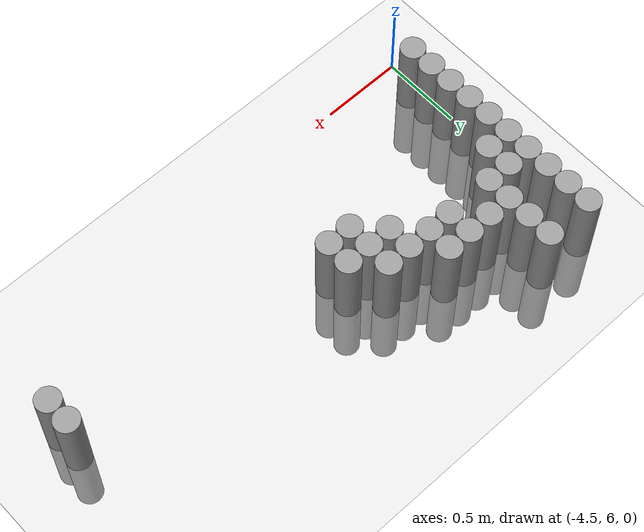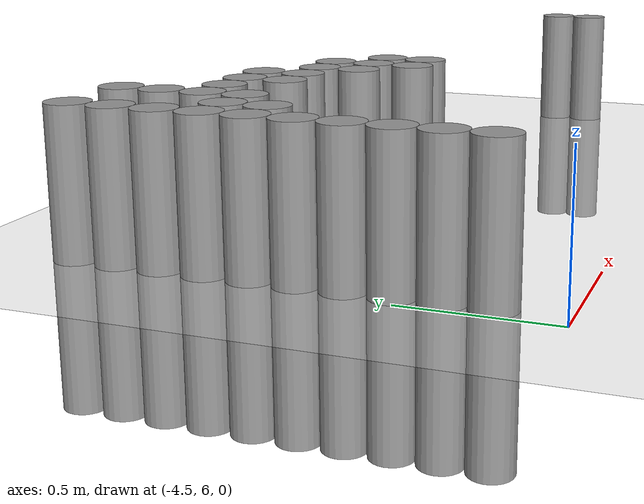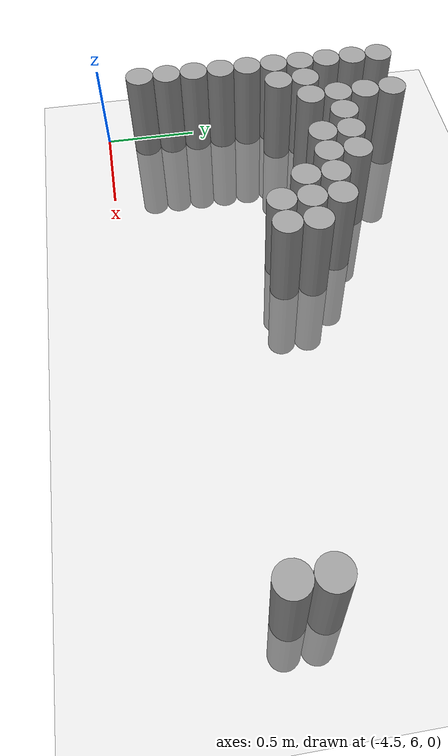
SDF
<sdf version="1.6">
 <world name="default">
  <model name="ground_plane">
   <static>1</static>
   <static>1</static>
   <link name="link">
    <collision name="collision">
     <geometry><plane><normal>0 0 1</normal><size>100 100</size></plane></geometry>
     <surface><friction><ode><mu>100</mu><mu2>50</mu2></ode></friction></surface>
    </collision>
    <visual name="visual">
     <cast_shadows>0</cast_shadows>
     <geometry><plane><normal>0 0 1</normal><size>100 100</size></plane></geometry>
     <material>
      <script><uri>file://media/materials/scripts/gazebo.material</uri><name>Gazebo/Grey</name></script>
     </material>
    </visual>
   </link>
  </model>
  <model name="unit_cylinder_103">
   <static>1</static>
   <pose>-4.425000 6.225000 0.000000 0.000000 0.000000 0.000000</pose>
   <link name="link">
    <inertial>
     <mass>1</mass>
     <inertia><ixx>0.145833</ixx><ixy>0</ixy><ixz>0</ixz><iyy>0.145833</iyy><iyz>0</iyz><izz>0.125</izz></inertia>
    </inertial>
    <collision name="collision">
     <geometry><cylinder><radius>0.075000</radius><length>1</length></cylinder></geometry>
    </collision>
    <visual name="visual">
     <geometry><cylinder><radius>0.075000</radius><length>1</length></cylinder></geometry>
     <material>
      <script><name>Gazebo/Grey</name><uri>file://media/materials/scripts/gazebo.material</uri></script>
     </material>
    </visual>
   </link>
  </model>
  <model name="unit_cylinder_104">
   <static>1</static>
   <pose>-4.425000 6.375000 0.000000 0.000000 0.000000 0.000000</pose>
   <link name="link">
    <inertial>
     <mass>1</mass>
     <inertia><ixx>0.145833</ixx><ixy>0</ixy><ixz>0</ixz><iyy>0.145833</iyy><iyz>0</iyz><izz>0.125</izz></inertia>
    </inertial>
    <collision name="collision">
     <geometry><cylinder><radius>0.075000</radius><length>1</length></cylinder></geometry>
    </collision>
    <visual name="visual">
     <geometry><cylinder><radius>0.075000</radius><length>1</length></cylinder></geometry>
     <material>
      <script><name>Gazebo/Grey</name><uri>file://media/materials/scripts/gazebo.material</uri></script>
     </material>
    </visual>
   </link>
  </model>
  <model name="unit_cylinder_105">
   <static>1</static>
   <pose>-4.425000 6.525000 0.000000 0.000000 0.000000 0.000000</pose>
   <link name="link">
    <inertial>
     <mass>1</mass>
     <inertia><ixx>0.145833</ixx><ixy>0</ixy><ixz>0</ixz><iyy>0.145833</iyy><iyz>0</iyz><izz>0.125</izz></inertia>
    </inertial>
    <collision name="collision">
     <geometry><cylinder><radius>0.075000</radius><length>1</length></cylinder></geometry>
    </collision>
    <visual name="visual">
     <geometry><cylinder><radius>0.075000</radius><length>1</length></cylinder></geometry>
     <material>
      <script><name>Gazebo/Grey</name><uri>file://media/materials/scripts/gazebo.material</uri></script>
     </material>
    </visual>
   </link>
  </model>
  <model name="unit_cylinder_106">
   <static>1</static>
   <pose>-4.425000 6.675000 0.000000 0.000000 0.000000 0.000000</pose>
   <link name="link">
    <inertial>
     <mass>1</mass>
     <inertia><ixx>0.145833</ixx><ixy>0</ixy><ixz>0</ixz><iyy>0.145833</iyy><iyz>0</iyz><izz>0.125</izz></inertia>
    </inertial>
    <collision name="collision">
     <geometry><cylinder><radius>0.075000</radius><length>1</length></cylinder></geometry>
    </collision>
    <visual name="visual">
     <geometry><cylinder><radius>0.075000</radius><length>1</length></cylinder></geometry>
     <material>
      <script><name>Gazebo/Grey</name><uri>file://media/materials/scripts/gazebo.material</uri></script>
     </material>
    </visual>
   </link>
  </model>
  <model name="unit_cylinder_107">
   <static>1</static>
   <pose>-4.425000 6.825000 0.000000 0.000000 0.000000 0.000000</pose>
   <link name="link">
    <inertial>
     <mass>1</mass>
     <inertia><ixx>0.145833</ixx><ixy>0</ixy><ixz>0</ixz><iyy>0.145833</iyy><iyz>0</iyz><izz>0.125</izz></inertia>
    </inertial>
    <collision name="collision">
     <geometry><cylinder><radius>0.075000</radius><length>1</length></cylinder></geometry>
    </collision>
    <visual name="visual">
     <geometry><cylinder><radius>0.075000</radius><length>1</length></cylinder></geometry>
     <material>
      <script><name>Gazebo/Grey</name><uri>file://media/materials/scripts/gazebo.material</uri></script>
     </material>
    </visual>
   </link>
  </model>
  <model name="unit_cylinder_108">
   <static>1</static>
   <pose>-4.425000 6.975000 0.000000 0.000000 0.000000 0.000000</pose>
   <link name="link">
    <inertial>
     <mass>1</mass>
     <inertia><ixx>0.145833</ixx><ixy>0</ixy><ixz>0</ixz><iyy>0.145833</iyy><iyz>0</iyz><izz>0.125</izz></inertia>
    </inertial>
    <collision name="collision">
     <geometry><cylinder><radius>0.075000</radius><length>1</length></cylinder></geometry>
    </collision>
    <visual name="visual">
     <geometry><cylinder><radius>0.075000</radius><length>1</length></cylinder></geometry>
     <material>
      <script><name>Gazebo/Grey</name><uri>file://media/materials/scripts/gazebo.material</uri></script>
     </material>
    </visual>
   </link>
  </model>
  <model name="unit_cylinder_109">
   <static>1</static>
   <pose>-4.425000 7.125000 0.000000 0.000000 0.000000 0.000000</pose>
   <link name="link">
    <inertial>
     <mass>1</mass>
     <inertia><ixx>0.145833</ixx><ixy>0</ixy><ixz>0</ixz><iyy>0.145833</iyy><iyz>0</iyz><izz>0.125</izz></inertia>
    </inertial>
    <collision name="collision">
     <geometry><cylinder><radius>0.075000</radius><length>1</length></cylinder></geometry>
    </collision>
    <visual name="visual">
     <geometry><cylinder><radius>0.075000</radius><length>1</length></cylinder></geometry>
     <material>
      <script><name>Gazebo/Grey</name><uri>file://media/materials/scripts/gazebo.material</uri></script>
     </material>
    </visual>
   </link>
  </model>
  <model name="unit_cylinder_110">
   <static>1</static>
   <pose>-4.425000 7.275000 0.000000 0.000000 0.000000 0.000000</pose>
   <link name="link">
    <inertial>
     <mass>1</mass>
     <inertia><ixx>0.145833</ixx><ixy>0</ixy><ixz>0</ixz><iyy>0.145833</iyy><iyz>0</iyz><izz>0.125</izz></inertia>
    </inertial>
    <collision name="collision">
     <geometry><cylinder><radius>0.075000</radius><length>1</length></cylinder></geometry>
    </collision>
    <visual name="visual">
     <geometry><cylinder><radius>0.075000</radius><length>1</length></cylinder></geometry>
     <material>
      <script><name>Gazebo/Grey</name><uri>file://media/materials/scripts/gazebo.material</uri></script>
     </material>
    </visual>
   </link>
  </model>
  <model name="unit_cylinder_111">
   <static>1</static>
   <pose>-4.425000 7.425000 0.000000 0.000000 0.000000 0.000000</pose>
   <link name="link">
    <inertial>
     <mass>1</mass>
     <inertia><ixx>0.145833</ixx><ixy>0</ixy><ixz>0</ixz><iyy>0.145833</iyy><iyz>0</iyz><izz>0.125</izz></inertia>
    </inertial>
    <collision name="collision">
     <geometry><cylinder><radius>0.075000</radius><length>1</length></cylinder></geometry>
    </collision>
    <visual name="visual">
     <geometry><cylinder><radius>0.075000</radius><length>1</length></cylinder></geometry>
     <material>
      <script><name>Gazebo/Grey</name><uri>file://media/materials/scripts/gazebo.material</uri></script>
     </material>
    </visual>
   </link>
  </model>
  <model name="unit_cylinder_112">
   <static>1</static>
   <pose>-4.425000 7.575000 0.000000 0.000000 0.000000 0.000000</pose>
   <link name="link">
    <inertial>
     <mass>1</mass>
     <inertia><ixx>0.145833</ixx><ixy>0</ixy><ixz>0</ixz><iyy>0.145833</iyy><iyz>0</iyz><izz>0.125</izz></inertia>
    </inertial>
    <collision name="collision">
     <geometry><cylinder><radius>0.075000</radius><length>1</length></cylinder></geometry>
    </collision>
    <visual name="visual">
     <geometry><cylinder><radius>0.075000</radius><length>1</length></cylinder></geometry>
     <material>
      <script><name>Gazebo/Grey</name><uri>file://media/materials/scripts/gazebo.material</uri></script>
     </material>
    </visual>
   </link>
  </model>
  <model name="unit_cylinder_127">
   <static>1</static>
   <pose>-4.275000 6.975000 0.000000 0.000000 0.000000 0.000000</pose>
   <link name="link">
    <inertial>
     <mass>1</mass>
     <inertia><ixx>0.145833</ixx><ixy>0</ixy><ixz>0</ixz><iyy>0.145833</iyy><iyz>0</iyz><izz>0.125</izz></inertia>
    </inertial>
    <collision name="collision">
     <geometry><cylinder><radius>0.075000</radius><length>1</length></cylinder></geometry>
    </collision>
    <visual name="visual">
     <geometry><cylinder><radius>0.075000</radius><length>1</length></cylinder></geometry>
     <material>
      <script><name>Gazebo/Grey</name><uri>file://media/materials/scripts/gazebo.material</uri></script>
     </material>
    </visual>
   </link>
  </model>
  <model name="unit_cylinder_128">
   <static>1</static>
   <pose>-4.275000 7.125000 0.000000 0.000000 0.000000 0.000000</pose>
   <link name="link">
    <inertial>
     <mass>1</mass>
     <inertia><ixx>0.145833</ixx><ixy>0</ixy><ixz>0</ixz><iyy>0.145833</iyy><iyz>0</iyz><izz>0.125</izz></inertia>
    </inertial>
    <collision name="collision">
     <geometry><cylinder><radius>0.075000</radius><length>1</length></cylinder></geometry>
    </collision>
    <visual name="visual">
     <geometry><cylinder><radius>0.075000</radius><length>1</length></cylinder></geometry>
     <material>
      <script><name>Gazebo/Grey</name><uri>file://media/materials/scripts/gazebo.material</uri></script>
     </material>
    </visual>
   </link>
  </model>
  <model name="unit_cylinder_137">
   <static>1</static>
   <pose>-4.125000 7.125000 0.000000 0.000000 0.000000 0.000000</pose>
   <link name="link">
    <inertial>
     <mass>1</mass>
     <inertia><ixx>0.145833</ixx><ixy>0</ixy><ixz>0</ixz><iyy>0.145833</iyy><iyz>0</iyz><izz>0.125</izz></inertia>
    </inertial>
    <collision name="collision">
     <geometry><cylinder><radius>0.075000</radius><length>1</length></cylinder></geometry>
    </collision>
    <visual name="visual">
     <geometry><cylinder><radius>0.075000</radius><length>1</length></cylinder></geometry>
     <material>
      <script><name>Gazebo/Grey</name><uri>file://media/materials/scripts/gazebo.material</uri></script>
     </material>
    </visual>
   </link>
  </model>
  <model name="unit_cylinder_138">
   <static>1</static>
   <pose>-4.125000 7.275000 0.000000 0.000000 0.000000 0.000000</pose>
   <link name="link">
    <inertial>
     <mass>1</mass>
     <inertia><ixx>0.145833</ixx><ixy>0</ixy><ixz>0</ixz><iyy>0.145833</iyy><iyz>0</iyz><izz>0.125</izz></inertia>
    </inertial>
    <collision name="collision">
     <geometry><cylinder><radius>0.075000</radius><length>1</length></cylinder></geometry>
    </collision>
    <visual name="visual">
     <geometry><cylinder><radius>0.075000</radius><length>1</length></cylinder></geometry>
     <material>
      <script><name>Gazebo/Grey</name><uri>file://media/materials/scripts/gazebo.material</uri></script>
     </material>
    </visual>
   </link>
  </model>
  <model name="unit_cylinder_139">
   <static>1</static>
   <pose>-4.125000 7.425000 0.000000 0.000000 0.000000 0.000000</pose>
   <link name="link">
    <inertial>
     <mass>1</mass>
     <inertia><ixx>0.145833</ixx><ixy>0</ixy><ixz>0</ixz><iyy>0.145833</iyy><iyz>0</iyz><izz>0.125</izz></inertia>
    </inertial>
    <collision name="collision">
     <geometry><cylinder><radius>0.075000</radius><length>1</length></cylinder></geometry>
    </collision>
    <visual name="visual">
     <geometry><cylinder><radius>0.075000</radius><length>1</length></cylinder></geometry>
     <material>
      <script><name>Gazebo/Grey</name><uri>file://media/materials/scripts/gazebo.material</uri></script>
     </material>
    </visual>
   </link>
  </model>
  <model name="unit_cylinder_140">
   <static>1</static>
   <pose>-4.125000 7.575000 0.000000 0.000000 0.000000 0.000000</pose>
   <link name="link">
    <inertial>
     <mass>1</mass>
     <inertia><ixx>0.145833</ixx><ixy>0</ixy><ixz>0</ixz><iyy>0.145833</iyy><iyz>0</iyz><izz>0.125</izz></inertia>
    </inertial>
    <collision name="collision">
     <geometry><cylinder><radius>0.075000</radius><length>1</length></cylinder></geometry>
    </collision>
    <visual name="visual">
     <geometry><cylinder><radius>0.075000</radius><length>1</length></cylinder></geometry>
     <material>
      <script><name>Gazebo/Grey</name><uri>file://media/materials/scripts/gazebo.material</uri></script>
     </material>
    </visual>
   </link>
  </model>
  <model name="unit_cylinder_142">
   <static>1</static>
   <pose>-3.975000 7.275000 0.000000 0.000000 0.000000 0.000000</pose>
   <link name="link">
    <inertial>
     <mass>1</mass>
     <inertia><ixx>0.145833</ixx><ixy>0</ixy><ixz>0</ixz><iyy>0.145833</iyy><iyz>0</iyz><izz>0.125</izz></inertia>
    </inertial>
    <collision name="collision">
     <geometry><cylinder><radius>0.075000</radius><length>1</length></cylinder></geometry>
    </collision>
    <visual name="visual">
     <geometry><cylinder><radius>0.075000</radius><length>1</length></cylinder></geometry>
     <material>
      <script><name>Gazebo/Grey</name><uri>file://media/materials/scripts/gazebo.material</uri></script>
     </material>
    </visual>
   </link>
  </model>
  <model name="unit_cylinder_143">
   <static>1</static>
   <pose>-3.825000 7.125000 0.000000 0.000000 0.000000 0.000000</pose>
   <link name="link">
    <inertial>
     <mass>1</mass>
     <inertia><ixx>0.145833</ixx><ixy>0</ixy><ixz>0</ixz><iyy>0.145833</iyy><iyz>0</iyz><izz>0.125</izz></inertia>
    </inertial>
    <collision name="collision">
     <geometry><cylinder><radius>0.075000</radius><length>1</length></cylinder></geometry>
    </collision>
    <visual name="visual">
     <geometry><cylinder><radius>0.075000</radius><length>1</length></cylinder></geometry>
     <material>
      <script><name>Gazebo/Grey</name><uri>file://media/materials/scripts/gazebo.material</uri></script>
     </material>
    </visual>
   </link>
  </model>
  <model name="unit_cylinder_144">
   <static>1</static>
   <pose>-3.825000 7.275000 0.000000 0.000000 0.000000 0.000000</pose>
   <link name="link">
    <inertial>
     <mass>1</mass>
     <inertia><ixx>0.145833</ixx><ixy>0</ixy><ixz>0</ixz><iyy>0.145833</iyy><iyz>0</iyz><izz>0.125</izz></inertia>
    </inertial>
    <collision name="collision">
     <geometry><cylinder><radius>0.075000</radius><length>1</length></cylinder></geometry>
    </collision>
    <visual name="visual">
     <geometry><cylinder><radius>0.075000</radius><length>1</length></cylinder></geometry>
     <material>
      <script><name>Gazebo/Grey</name><uri>file://media/materials/scripts/gazebo.material</uri></script>
     </material>
    </visual>
   </link>
  </model>
  <model name="unit_cylinder_145">
   <static>1</static>
   <pose>-3.675000 7.125000 0.000000 0.000000 0.000000 0.000000</pose>
   <link name="link">
    <inertial>
     <mass>1</mass>
     <inertia><ixx>0.145833</ixx><ixy>0</ixy><ixz>0</ixz><iyy>0.145833</iyy><iyz>0</iyz><izz>0.125</izz></inertia>
    </inertial>
    <collision name="collision">
     <geometry><cylinder><radius>0.075000</radius><length>1</length></cylinder></geometry>
    </collision>
    <visual name="visual">
     <geometry><cylinder><radius>0.075000</radius><length>1</length></cylinder></geometry>
     <material>
      <script><name>Gazebo/Grey</name><uri>file://media/materials/scripts/gazebo.material</uri></script>
     </material>
    </visual>
   </link>
  </model>
  <model name="unit_cylinder_146">
   <static>1</static>
   <pose>-3.675000 7.275000 0.000000 0.000000 0.000000 0.000000</pose>
   <link name="link">
    <inertial>
     <mass>1</mass>
     <inertia><ixx>0.145833</ixx><ixy>0</ixy><ixz>0</ixz><iyy>0.145833</iyy><iyz>0</iyz><izz>0.125</izz></inertia>
    </inertial>
    <collision name="collision">
     <geometry><cylinder><radius>0.075000</radius><length>1</length></cylinder></geometry>
    </collision>
    <visual name="visual">
     <geometry><cylinder><radius>0.075000</radius><length>1</length></cylinder></geometry>
     <material>
      <script><name>Gazebo/Grey</name><uri>file://media/materials/scripts/gazebo.material</uri></script>
     </material>
    </visual>
   </link>
  </model>
  <model name="unit_cylinder_147">
   <static>1</static>
   <pose>-3.525000 6.975000 0.000000 0.000000 0.000000 0.000000</pose>
   <link name="link">
    <inertial>
     <mass>1</mass>
     <inertia><ixx>0.145833</ixx><ixy>0</ixy><ixz>0</ixz><iyy>0.145833</iyy><iyz>0</iyz><izz>0.125</izz></inertia>
    </inertial>
    <collision name="collision">
     <geometry><cylinder><radius>0.075000</radius><length>1</length></cylinder></geometry>
    </collision>
    <visual name="visual">
     <geometry><cylinder><radius>0.075000</radius><length>1</length></cylinder></geometry>
     <material>
      <script><name>Gazebo/Grey</name><uri>file://media/materials/scripts/gazebo.material</uri></script>
     </material>
    </visual>
   </link>
  </model>
  <model name="unit_cylinder_148">
   <static>1</static>
   <pose>-3.525000 7.125000 0.000000 0.000000 0.000000 0.000000</pose>
   <link name="link">
    <inertial>
     <mass>1</mass>
     <inertia><ixx>0.145833</ixx><ixy>0</ixy><ixz>0</ixz><iyy>0.145833</iyy><iyz>0</iyz><izz>0.125</izz></inertia>
    </inertial>
    <collision name="collision">
     <geometry><cylinder><radius>0.075000</radius><length>1</length></cylinder></geometry>
    </collision>
    <visual name="visual">
     <geometry><cylinder><radius>0.075000</radius><length>1</length></cylinder></geometry>
     <material>
      <script><name>Gazebo/Grey</name><uri>file://media/materials/scripts/gazebo.material</uri></script>
     </material>
    </visual>
   </link>
  </model>
  <model name="unit_cylinder_149">
   <static>1</static>
   <pose>-3.375000 6.825000 0.000000 0.000000 0.000000 0.000000</pose>
   <link name="link">
    <inertial>
     <mass>1</mass>
     <inertia><ixx>0.145833</ixx><ixy>0</ixy><ixz>0</ixz><iyy>0.145833</iyy><iyz>0</iyz><izz>0.125</izz></inertia>
    </inertial>
    <collision name="collision">
     <geometry><cylinder><radius>0.075000</radius><length>1</length></cylinder></geometry>
    </collision>
    <visual name="visual">
     <geometry><cylinder><radius>0.075000</radius><length>1</length></cylinder></geometry>
     <material>
      <script><name>Gazebo/Grey</name><uri>file://media/materials/scripts/gazebo.material</uri></script>
     </material>
    </visual>
   </link>
  </model>
  <model name="unit_cylinder_150">
   <static>1</static>
   <pose>-3.375000 6.975000 0.000000 0.000000 0.000000 0.000000</pose>
   <link name="link">
    <inertial>
     <mass>1</mass>
     <inertia><ixx>0.145833</ixx><ixy>0</ixy><ixz>0</ixz><iyy>0.145833</iyy><iyz>0</iyz><izz>0.125</izz></inertia>
    </inertial>
    <collision name="collision">
     <geometry><cylinder><radius>0.075000</radius><length>1</length></cylinder></geometry>
    </collision>
    <visual name="visual">
     <geometry><cylinder><radius>0.075000</radius><length>1</length></cylinder></geometry>
     <material>
      <script><name>Gazebo/Grey</name><uri>file://media/materials/scripts/gazebo.material</uri></script>
     </material>
    </visual>
   </link>
  </model>
  <model name="unit_cylinder_151">
   <static>1</static>
   <pose>-3.375000 7.125000 0.000000 0.000000 0.000000 0.000000</pose>
   <link name="link">
    <inertial>
     <mass>1</mass>
     <inertia><ixx>0.145833</ixx><ixy>0</ixy><ixz>0</ixz><iyy>0.145833</iyy><iyz>0</iyz><izz>0.125</izz></inertia>
    </inertial>
    <collision name="collision">
     <geometry><cylinder><radius>0.075000</radius><length>1</length></cylinder></geometry>
    </collision>
    <visual name="visual">
     <geometry><cylinder><radius>0.075000</radius><length>1</length></cylinder></geometry>
     <material>
      <script><name>Gazebo/Grey</name><uri>file://media/materials/scripts/gazebo.material</uri></script>
     </material>
    </visual>
   </link>
  </model>
  <model name="unit_cylinder_152">
   <static>1</static>
   <pose>-3.225000 6.825000 0.000000 0.000000 0.000000 0.000000</pose>
   <link name="link">
    <inertial>
     <mass>1</mass>
     <inertia><ixx>0.145833</ixx><ixy>0</ixy><ixz>0</ixz><iyy>0.145833</iyy><iyz>0</iyz><izz>0.125</izz></inertia>
    </inertial>
    <collision name="collision">
     <geometry><cylinder><radius>0.075000</radius><length>1</length></cylinder></geometry>
    </collision>
    <visual name="visual">
     <geometry><cylinder><radius>0.075000</radius><length>1</length></cylinder></geometry>
     <material>
      <script><name>Gazebo/Grey</name><uri>file://media/materials/scripts/gazebo.material</uri></script>
     </material>
    </visual>
   </link>
  </model>
  <model name="unit_cylinder_153">
   <static>1</static>
   <pose>-3.225000 6.975000 0.000000 0.000000 0.000000 0.000000</pose>
   <link name="link">
    <inertial>
     <mass>1</mass>
     <inertia><ixx>0.145833</ixx><ixy>0</ixy><ixz>0</ixz><iyy>0.145833</iyy><iyz>0</iyz><izz>0.125</izz></inertia>
    </inertial>
    <collision name="collision">
     <geometry><cylinder><radius>0.075000</radius><length>1</length></cylinder></geometry>
    </collision>
    <visual name="visual">
     <geometry><cylinder><radius>0.075000</radius><length>1</length></cylinder></geometry>
     <material>
      <script><name>Gazebo/Grey</name><uri>file://media/materials/scripts/gazebo.material</uri></script>
     </material>
    </visual>
   </link>
  </model>
  <model name="unit_cylinder_165">
   <static>1</static>
   <pose>-1.575000 6.525000 0.000000 0.000000 0.000000 0.000000</pose>
   <link name="link">
    <inertial>
     <mass>1</mass>
     <inertia><ixx>0.145833</ixx><ixy>0</ixy><ixz>0</ixz><iyy>0.145833</iyy><iyz>0</iyz><izz>0.125</izz></inertia>
    </inertial>
    <collision name="collision">
     <geometry><cylinder><radius>0.075000</radius><length>1</length></cylinder></geometry>
    </collision>
    <visual name="visual">
     <geometry><cylinder><radius>0.075000</radius><length>1</length></cylinder></geometry>
     <material>
      <script><name>Gazebo/Grey</name><uri>file://media/materials/scripts/gazebo.material</uri></script>
     </material>
    </visual>
   </link>
  </model>
  <model name="unit_cylinder_166">
   <static>1</static>
   <pose>-1.575000 6.675000 0.000000 0.000000 0.000000 0.000000</pose>
   <link name="link">
    <inertial>
     <mass>1</mass>
     <inertia><ixx>0.145833</ixx><ixy>0</ixy><ixz>0</ixz><iyy>0.145833</iyy><iyz>0</iyz><izz>0.125</izz></inertia>
    </inertial>
    <collision name="collision">
     <geometry><cylinder><radius>0.075000</radius><length>1</length></cylinder></geometry>
    </collision>
    <visual name="visual">
     <geometry><cylinder><radius>0.075000</radius><length>1</length></cylinder></geometry>
     <material>
      <script><name>Gazebo/Grey</name><uri>file://media/materials/scripts/gazebo.material</uri></script>
     </material>
    </visual>
   </link>
  </model>
 </world>
</sdf>
